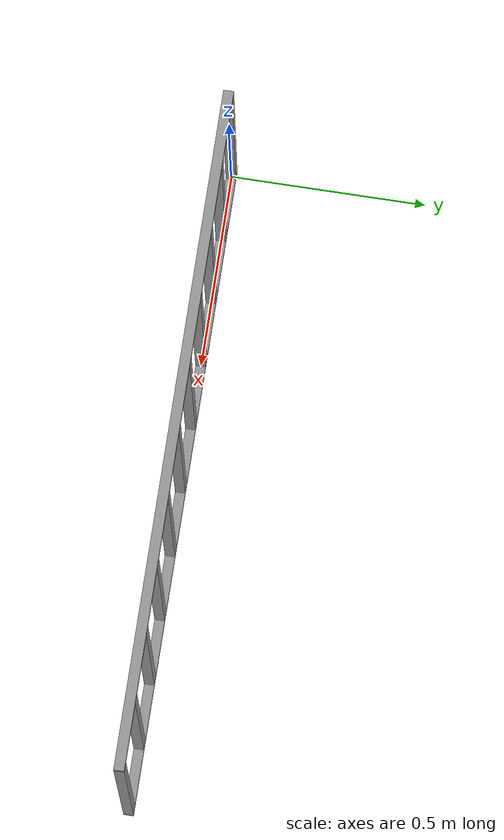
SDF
<?xml version="1.0" ?>
<sdf version="1.5">
  <model name="pet_gate_wide">
    <static>true</static>
    <link name="link">

      <collision name="bar1_collision">
        <pose>0 0 0.381 0 0 0</pose>
        <geometry>
          <box>
            <size>0.0254 0.0254 0.7366</size>
          </box>
        </geometry>
      </collision>
      <visual name="bar1_visual">
        <pose>0 0 0.381 0 0 0</pose>
        <geometry>
          <box>
            <size>0.0254 0.0254 0.7366</size>
          </box>
        </geometry>
        <material>
          <script>
            <uri>file://media/materials/scripts/gazebo.material</uri>
            <name>Gazebo/Grey</name>
          </script>
        </material>
      </visual>

      <collision name="bar2_collision">
        <pose>0.1651 0 0.381 0 0 0</pose>
        <geometry>
          <box>
            <size>0.0254 0.0254 0.7366</size>
          </box>
        </geometry>
      </collision>
      <visual name="bar2_visual">
        <pose>0.1651 0 0.381 0 0 0</pose>
        <geometry>
          <box>
            <size>0.0254 0.0254 0.7366</size>
          </box>
        </geometry>
        <material>
          <script>
            <uri>file://media/materials/scripts/gazebo.material</uri>
            <name>Gazebo/Grey</name>
          </script>
        </material>
      </visual>

      <collision name="bar3_collision">
        <pose>0.3302 0 0.381 0 0 0</pose>
        <geometry>
          <box>
            <size>0.0254 0.0254 0.7366</size>
          </box>
        </geometry>
      </collision>
      <visual name="bar3_visual">
        <pose>0.3302 0 0.381 0 0 0</pose>
        <geometry>
          <box>
            <size>0.0254 0.0254 0.7366</size>
          </box>
        </geometry>
        <material>
          <script>
            <uri>file://media/materials/scripts/gazebo.material</uri>
            <name>Gazebo/Grey</name>
          </script>
        </material>
      </visual>

      <collision name="bar4_collision">
        <pose>0.4953 0 0.381 0 0 0</pose>
        <geometry>
          <box>
            <size>0.0254 0.0254 0.7366</size>
          </box>
        </geometry>
      </collision>
      <visual name="bar4_visual">
        <pose>0.4953 0 0.381 0 0 0</pose>
        <geometry>
          <box>
            <size>0.0254 0.0254 0.7366</size>
          </box>
        </geometry>
        <material>
          <script>
            <uri>file://media/materials/scripts/gazebo.material</uri>
            <name>Gazebo/Grey</name>
          </script>
        </material>
      </visual>

      <collision name="bar5_collision">
        <pose>0.6604 0 0.381 0 0 0</pose>
        <geometry>
          <box>
            <size>0.0254 0.0254 0.7366</size>
          </box>
        </geometry>
      </collision>
      <visual name="bar5_visual">
        <pose>0.6604 0 0.381 0 0 0</pose>
        <geometry>
          <box>
            <size>0.0254 0.0254 0.7366</size>
          </box>
        </geometry>
        <material>
          <script>
            <uri>file://media/materials/scripts/gazebo.material</uri>
            <name>Gazebo/Grey</name>
          </script>
        </material>
      </visual>

      <collision name="bar6_collision">
        <pose>0.8255 0 0.381 0 0 0</pose>
        <geometry>
          <box>
            <size>0.0254 0.0254 0.7366</size>
          </box>
        </geometry>
      </collision>
      <visual name="bar6_visual">
        <pose>0.8255 0 0.381 0 0 0</pose>
        <geometry>
          <box>
            <size>0.0254 0.0254 0.7366</size>
          </box>
        </geometry>
        <material>
          <script>
            <uri>file://media/materials/scripts/gazebo.material</uri>
            <name>Gazebo/Grey</name>
          </script>
        </material>
      </visual>

      <collision name="bar7_collision">
        <pose>0.9906 0 0.381 0 0 0</pose>
        <geometry>
          <box>
            <size>0.0254 0.0254 0.7366</size>
          </box>
        </geometry>
      </collision>
      <visual name="bar7_visual">
        <pose>0.9906 0 0.381 0 0 0</pose>
        <geometry>
          <box>
            <size>0.0254 0.0254 0.7366</size>
          </box>
        </geometry>
        <material>
          <script>
            <uri>file://media/materials/scripts/gazebo.material</uri>
            <name>Gazebo/Grey</name>
          </script>
        </material>
      </visual>

      <collision name="bar8_collision">
        <pose>1.1557 0 0.381 0 0 0</pose>
        <geometry>
          <box>
            <size>0.0254 0.0254 0.7366</size>
          </box>
        </geometry>
      </collision>
      <visual name="bar8_visual">
        <pose>1.1557 0 0.381 0 0 0</pose>
        <geometry>
          <box>
            <size>0.0254 0.0254 0.7366</size>
          </box>
        </geometry>
        <material>
          <script>
            <uri>file://media/materials/scripts/gazebo.material</uri>
            <name>Gazebo/Grey</name>
          </script>
        </material>
      </visual>

      <collision name="bar9_collision">
        <pose>1.3208 0 0.381 0 0 0</pose>
        <geometry>
          <box>
            <size>0.0254 0.0254 0.7366</size>
          </box>
        </geometry>
      </collision>
      <visual name="bar9_visual">
        <pose>1.3208 0 0.381 0 0 0</pose>
        <geometry>
          <box>
            <size>0.0254 0.0254 0.7366</size>
          </box>
        </geometry>
        <material>
          <script>
            <uri>file://media/materials/scripts/gazebo.material</uri>
            <name>Gazebo/Grey</name>
          </script>
        </material>
      </visual>

      <collision name="bar10_collision">
        <pose>1.4859 0 0.381 0 0 0</pose>
        <geometry>
          <box>
            <size>0.0254 0.0254 0.7366</size>
          </box>
        </geometry>
      </collision>
      <visual name="bar10_visual">
        <pose>1.4859 0 0.381 0 0 0</pose>
        <geometry>
          <box>
            <size>0.0254 0.0254 0.7366</size>
          </box>
        </geometry>
        <material>
          <script>
            <uri>file://media/materials/scripts/gazebo.material</uri>
            <name>Gazebo/Grey</name>
          </script>
        </material>
      </visual>

      <collision name="bar11_collision">
        <pose>1.651 0 0.381 0 0 0</pose>
        <geometry>
          <box>
            <size>0.0254 0.0254 0.7366</size>
          </box>
        </geometry>
      </collision>
      <visual name="bar11_visual">
        <pose>1.651 0 0.381 0 0 0</pose>
        <geometry>
          <box>
            <size>0.0254 0.0254 0.7366</size>
          </box>
        </geometry>
        <material>
          <script>
            <uri>file://media/materials/scripts/gazebo.material</uri>
            <name>Gazebo/Grey</name>
          </script>
        </material>
      </visual>

      <collision name="top_rail_collision">
        <pose>0.8255 0 0.7493 0 0 0</pose>
        <geometry>
          <box>
            <size>1.6764 0.0254 0.0254</size>
          </box>
        </geometry>
      </collision>
      <visual name="top_rail_visual">
        <pose>0.8255 0 0.7493 0 0 0</pose>
        <geometry>
          <box>
            <size>1.6764 0.0254 0.0254</size>
          </box>
        </geometry>
        <material>
          <script>
            <uri>file://media/materials/scripts/gazebo.material</uri>
            <name>Gazebo/Grey</name>
          </script>
        </material>
      </visual>

      <collision name="bottom_rail_collision">
        <pose>0.8255 0 0.0127 0 0 0</pose>
        <geometry>
          <box>
            <size>1.6764 0.0254 0.0254</size>
          </box>
        </geometry>
      </collision>
      <visual name="bottom_rail_visual">
        <pose>0.8255 0 0.0127 0 0 0</pose>
        <geometry>
          <box>
            <size>1.6764 0.0254 0.0254</size>
          </box>
        </geometry>
        <material>
          <script>
            <uri>file://media/materials/scripts/gazebo.material</uri>
            <name>Gazebo/Grey</name>
          </script>
        </material>
      </visual>

    </link>
  </model>
</sdf>
